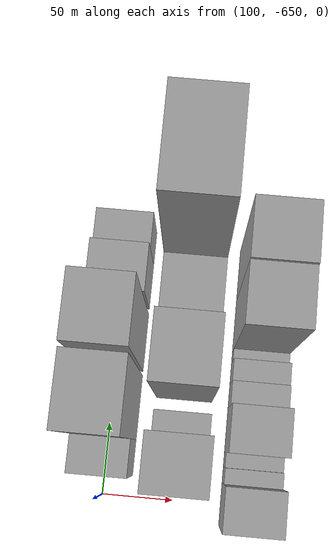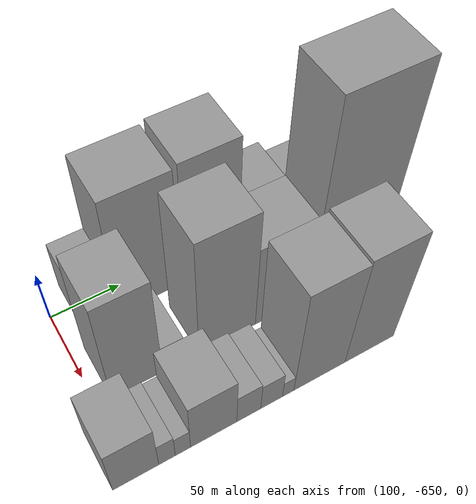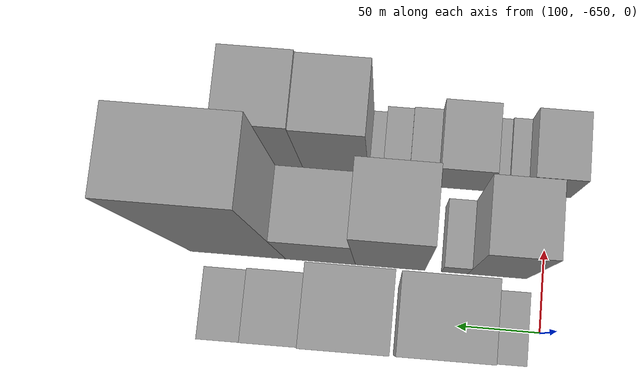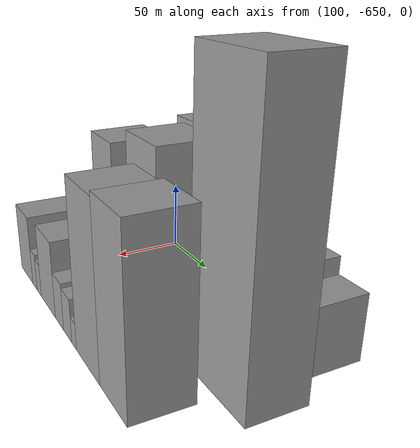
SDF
<sdf version="1.6">
 <world name="default">
  <model name="building_7">
   <static>1</static>
   <pose>100.0000 -622.5861 0 0.000000 0.000000 0.000000</pose>
   <link name="link">
    <pose>0 0 24.00 0 0 0</pose>
    <collision name="collision"><geometry><box><size>40.0000 25.4784 48.0000</size></box></geometry></collision>
    <visual name="visual">
     <cast_shadows>0</cast_shadows>
     <geometry><box><size>40.0000 25.4784 48.0000</size></box></geometry>
     <material>
      <script>
       <uri>model://grey_wall/materials/scripts</uri>
       <uri>model://grey_wall/materials/textures</uri>
       <name>vrc/grey_wall</name>
      </script>
     </material>
    </visual>
   </link>
  </model>
  <model name="building_8">
   <static>1</static>
   <pose>100.0000 -586.5119 0 0.000000 0.000000 0.000000</pose>
   <link name="link">
    <pose>0 0 58.50 0 0 0</pose>
    <collision name="collision"><geometry><box><size>40.0000 46.6699 117.0000</size></box></geometry></collision>
    <visual name="visual">
     <cast_shadows>0</cast_shadows>
     <geometry><box><size>40.0000 46.6699 117.0000</size></box></geometry>
     <material>
      <script>
       <uri>model://grey_wall/materials/scripts</uri>
       <uri>model://grey_wall/materials/textures</uri>
       <name>vrc/grey_wall</name>
      </script>
     </material>
    </visual>
   </link>
  </model>
  <model name="building_9">
   <static>1</static>
   <pose>100.0000 -538.8416 0 0.000000 0.000000 0.000000</pose>
   <link name="link">
    <pose>0 0 60.00 0 0 0</pose>
    <collision name="collision"><geometry><box><size>40.0000 42.6708 120.0000</size></box></geometry></collision>
    <visual name="visual">
     <cast_shadows>0</cast_shadows>
     <geometry><box><size>40.0000 42.6708 120.0000</size></box></geometry>
     <material>
      <script>
       <uri>model://grey_wall/materials/scripts</uri>
       <uri>model://grey_wall/materials/textures</uri>
       <name>vrc/grey_wall</name>
      </script>
     </material>
    </visual>
   </link>
  </model>
  <model name="building_10">
   <static>1</static>
   <pose>100.0000 -496.7508 0 0.000000 0.000000 0.000000</pose>
   <link name="link">
    <pose>0 0 28.50 0 0 0</pose>
    <collision name="collision"><geometry><box><size>40.0000 33.5108 57.0000</size></box></geometry></collision>
    <visual name="visual">
     <cast_shadows>0</cast_shadows>
     <geometry><box><size>40.0000 33.5108 57.0000</size></box></geometry>
     <material>
      <script>
       <uri>model://grey_wall/materials/scripts</uri>
       <uri>model://grey_wall/materials/textures</uri>
       <name>vrc/grey_wall</name>
      </script>
     </material>
    </visual>
   </link>
  </model>
  <model name="building_11">
   <static>1</static>
   <pose>100.0000 -467.1961 0 0.000000 0.000000 0.000000</pose>
   <link name="link">
    <pose>0 0 22.50 0 0 0</pose>
    <collision name="collision"><geometry><box><size>40.0000 25.5986 45.0000</size></box></geometry></collision>
    <visual name="visual">
     <cast_shadows>0</cast_shadows>
     <geometry><box><size>40.0000 25.5986 45.0000</size></box></geometry>
     <material>
      <script>
       <uri>model://grey_wall/materials/scripts</uri>
       <uri>model://grey_wall/materials/textures</uri>
       <name>vrc/grey_wall</name>
      </script>
     </material>
    </visual>
   </link>
  </model>
  <model name="building_55">
   <static>1</static>
   <pose>152.0000 -622.2448 0 0.000000 0.000000 0.000000</pose>
   <link name="link">
    <pose>0 0 52.50 0 0 0</pose>
    <collision name="collision"><geometry><box><size>40.0000 35.7155 105.0000</size></box></geometry></collision>
    <visual name="visual">
     <cast_shadows>0</cast_shadows>
     <geometry><box><size>40.0000 35.7155 105.0000</size></box></geometry>
     <material>
      <script>
       <uri>model://grey_wall/materials/scripts</uri>
       <uri>model://grey_wall/materials/textures</uri>
       <name>vrc/grey_wall</name>
      </script>
     </material>
    </visual>
   </link>
  </model>
  <model name="building_56">
   <static>1</static>
   <pose>152.0000 -596.3310 0 0.000000 0.000000 0.000000</pose>
   <link name="link">
    <pose>0 0 15.00 0 0 0</pose>
    <collision name="collision"><geometry><box><size>40.0000 16.1122 30.0000</size></box></geometry></collision>
    <visual name="visual">
     <cast_shadows>0</cast_shadows>
     <geometry><box><size>40.0000 16.1122 30.0000</size></box></geometry>
     <material>
      <script>
       <uri>model://grey_wall/materials/scripts</uri>
       <uri>model://grey_wall/materials/textures</uri>
       <name>vrc/grey_wall</name>
      </script>
     </material>
    </visual>
   </link>
  </model>
  <model name="building_57">
   <static>1</static>
   <pose>152.0000 -557.2181 0 0.000000 0.000000 0.000000</pose>
   <link name="link">
    <pose>0 0 60.00 0 0 0</pose>
    <collision name="collision"><geometry><box><size>40.0000 42.1136 120.0000</size></box></geometry></collision>
    <visual name="visual">
     <cast_shadows>0</cast_shadows>
     <geometry><box><size>40.0000 42.1136 120.0000</size></box></geometry>
     <material>
      <script>
       <uri>model://grey_wall/materials/scripts</uri>
       <uri>model://grey_wall/materials/textures</uri>
       <name>vrc/grey_wall</name>
      </script>
     </material>
    </visual>
   </link>
  </model>
  <model name="building_58">
   <static>1</static>
   <pose>152.0000 -514.9470 0 0.000000 0.000000 0.000000</pose>
   <link name="link">
    <pose>0 0 42.00 0 0 0</pose>
    <collision name="collision"><geometry><box><size>40.0000 42.4287 84.0000</size></box></geometry></collision>
    <visual name="visual">
     <cast_shadows>0</cast_shadows>
     <geometry><box><size>40.0000 42.4287 84.0000</size></box></geometry>
     <material>
      <script>
       <uri>model://grey_wall/materials/scripts</uri>
       <uri>model://grey_wall/materials/textures</uri>
       <name>vrc/grey_wall</name>
      </script>
     </material>
    </visual>
   </link>
  </model>
  <model name="building_59">
   <static>1</static>
   <pose>152.0000 -464.6839 0 0.000000 0.000000 0.000000</pose>
   <link name="link">
    <pose>0 0 91.50 0 0 0</pose>
    <collision name="collision"><geometry><box><size>40.0000 58.0975 183.0000</size></box></geometry></collision>
    <visual name="visual">
     <cast_shadows>0</cast_shadows>
     <geometry><box><size>40.0000 58.0975 183.0000</size></box></geometry>
     <material>
      <script>
       <uri>model://grey_wall/materials/scripts</uri>
       <uri>model://grey_wall/materials/textures</uri>
       <name>vrc/grey_wall</name>
      </script>
     </material>
    </visual>
   </link>
  </model>
  <model name="building_106">
   <static>1</static>
   <pose>204.0000 -649.2735 0 0.000000 0.000000 0.000000</pose>
   <link name="link">
    <pose>0 0 25.50 0 0 0</pose>
    <collision name="collision"><geometry><box><size>40.0000 29.9001 51.0000</size></box></geometry></collision>
    <visual name="visual">
     <cast_shadows>0</cast_shadows>
     <geometry><box><size>40.0000 29.9001 51.0000</size></box></geometry>
     <material>
      <script>
       <uri>model://grey_wall/materials/scripts</uri>
       <uri>model://grey_wall/materials/textures</uri>
       <name>vrc/grey_wall</name>
      </script>
     </material>
    </visual>
   </link>
  </model>
  <model name="building_107">
   <static>1</static>
   <pose>204.0000 -628.8190 0 0.000000 0.000000 0.000000</pose>
   <link name="link">
    <pose>0 0 13.50 0 0 0</pose>
    <collision name="collision"><geometry><box><size>40.0000 11.0089 27.0000</size></box></geometry></collision>
    <visual name="visual">
     <cast_shadows>0</cast_shadows>
     <geometry><box><size>40.0000 11.0089 27.0000</size></box></geometry>
     <material>
      <script>
       <uri>model://grey_wall/materials/scripts</uri>
       <uri>model://grey_wall/materials/textures</uri>
       <name>vrc/grey_wall</name>
      </script>
     </material>
    </visual>
   </link>
  </model>
  <model name="building_108">
   <static>1</static>
   <pose>204.0000 -618.1951 0 0.000000 0.000000 0.000000</pose>
   <link name="link">
    <pose>0 0 12.00 0 0 0</pose>
    <collision name="collision"><geometry><box><size>40.0000 10.2389 24.0000</size></box></geometry></collision>
    <visual name="visual">
     <cast_shadows>0</cast_shadows>
     <geometry><box><size>40.0000 10.2389 24.0000</size></box></geometry>
     <material>
      <script>
       <uri>model://grey_wall/materials/scripts</uri>
       <uri>model://grey_wall/materials/textures</uri>
       <name>vrc/grey_wall</name>
      </script>
     </material>
    </visual>
   </link>
  </model>
  <model name="building_109">
   <static>1</static>
   <pose>204.0000 -597.1276 0 0.000000 0.000000 0.000000</pose>
   <link name="link">
    <pose>0 0 27.00 0 0 0</pose>
    <collision name="collision"><geometry><box><size>40.0000 31.8962 54.0000</size></box></geometry></collision>
    <visual name="visual">
     <cast_shadows>0</cast_shadows>
     <geometry><box><size>40.0000 31.8962 54.0000</size></box></geometry>
     <material>
      <script>
       <uri>model://grey_wall/materials/scripts</uri>
       <uri>model://grey_wall/materials/textures</uri>
       <name>vrc/grey_wall</name>
      </script>
     </material>
    </visual>
   </link>
  </model>
  <model name="building_110">
   <static>1</static>
   <pose>204.0000 -572.6764 0 0.000000 0.000000 0.000000</pose>
   <link name="link">
    <pose>0 0 16.50 0 0 0</pose>
    <collision name="collision"><geometry><box><size>40.0000 17.0060 33.0000</size></box></geometry></collision>
    <visual name="visual">
     <cast_shadows>0</cast_shadows>
     <geometry><box><size>40.0000 17.0060 33.0000</size></box></geometry>
     <material>
      <script>
       <uri>model://grey_wall/materials/scripts</uri>
       <uri>model://grey_wall/materials/textures</uri>
       <name>vrc/grey_wall</name>
      </script>
     </material>
    </visual>
   </link>
  </model>
  <model name="building_111">
   <static>1</static>
   <pose>204.0000 -556.3129 0 0.000000 0.000000 0.000000</pose>
   <link name="link">
    <pose>0 0 15.00 0 0 0</pose>
    <collision name="collision"><geometry><box><size>40.0000 15.7212 30.0000</size></box></geometry></collision>
    <visual name="visual">
     <cast_shadows>0</cast_shadows>
     <geometry><box><size>40.0000 15.7212 30.0000</size></box></geometry>
     <material>
      <script>
       <uri>model://grey_wall/materials/scripts</uri>
       <uri>model://grey_wall/materials/textures</uri>
       <name>vrc/grey_wall</name>
      </script>
     </material>
    </visual>
   </link>
  </model>
  <model name="building_112">
   <static>1</static>
   <pose>204.0000 -544.2446 0 0.000000 0.000000 0.000000</pose>
   <link name="link">
    <pose>0 0 9.00 0 0 0</pose>
    <collision name="collision"><geometry><box><size>40.0000 8.4153 18.0000</size></box></geometry></collision>
    <visual name="visual">
     <cast_shadows>0</cast_shadows>
     <geometry><box><size>40.0000 8.4153 18.0000</size></box></geometry>
     <material>
      <script>
       <uri>model://grey_wall/materials/scripts</uri>
       <uri>model://grey_wall/materials/textures</uri>
       <name>vrc/grey_wall</name>
      </script>
     </material>
    </visual>
   </link>
  </model>
  <model name="building_113">
   <static>1</static>
   <pose>204.0000 -520.7409 0 0.000000 0.000000 0.000000</pose>
   <link name="link">
    <pose>0 0 55.50 0 0 0</pose>
    <collision name="collision"><geometry><box><size>40.0000 38.5921 111.0000</size></box></geometry></collision>
    <visual name="visual">
     <cast_shadows>0</cast_shadows>
     <geometry><box><size>40.0000 38.5921 111.0000</size></box></geometry>
     <material>
      <script>
       <uri>model://grey_wall/materials/scripts</uri>
       <uri>model://grey_wall/materials/textures</uri>
       <name>vrc/grey_wall</name>
      </script>
     </material>
    </visual>
   </link>
  </model>
  <model name="building_114">
   <static>1</static>
   <pose>204.0000 -482.3023 0 0.000000 0.000000 0.000000</pose>
   <link name="link">
    <pose>0 0 57.00 0 0 0</pose>
    <collision name="collision"><geometry><box><size>40.0000 38.2851 114.0000</size></box></geometry></collision>
    <visual name="visual">
     <cast_shadows>0</cast_shadows>
     <geometry><box><size>40.0000 38.2851 114.0000</size></box></geometry>
     <material>
      <script>
       <uri>model://grey_wall/materials/scripts</uri>
       <uri>model://grey_wall/materials/textures</uri>
       <name>vrc/grey_wall</name>
      </script>
     </material>
    </visual>
   </link>
  </model>
 </world>
</sdf>
